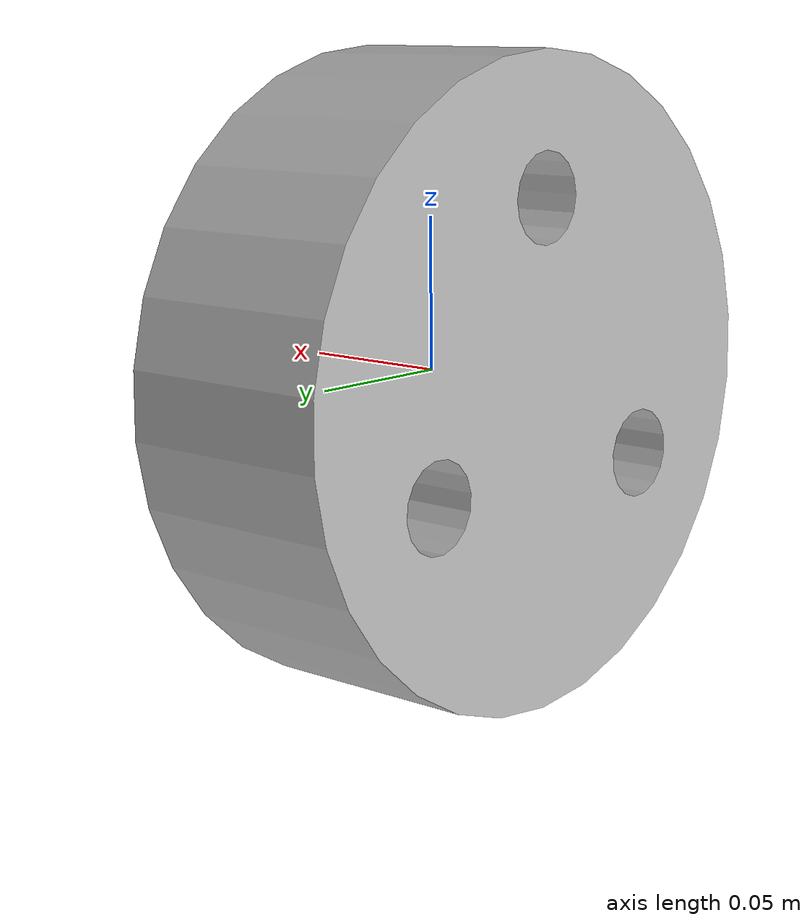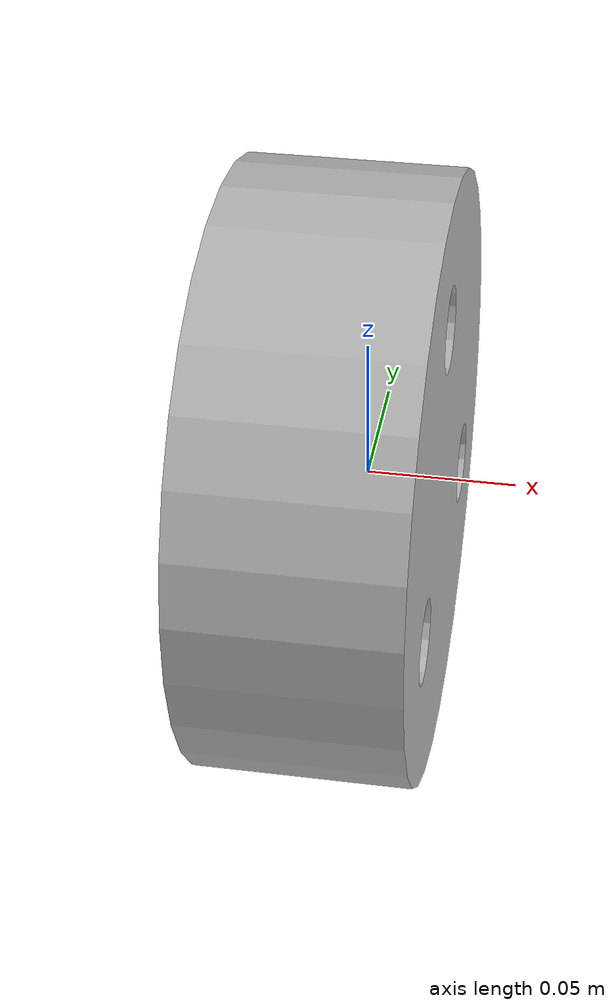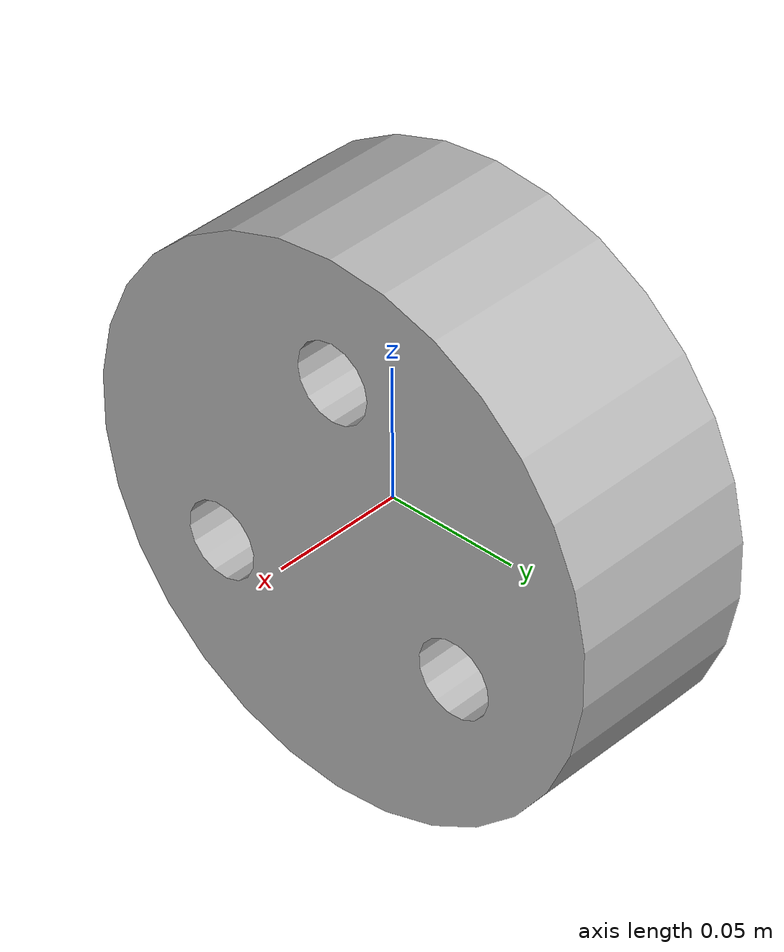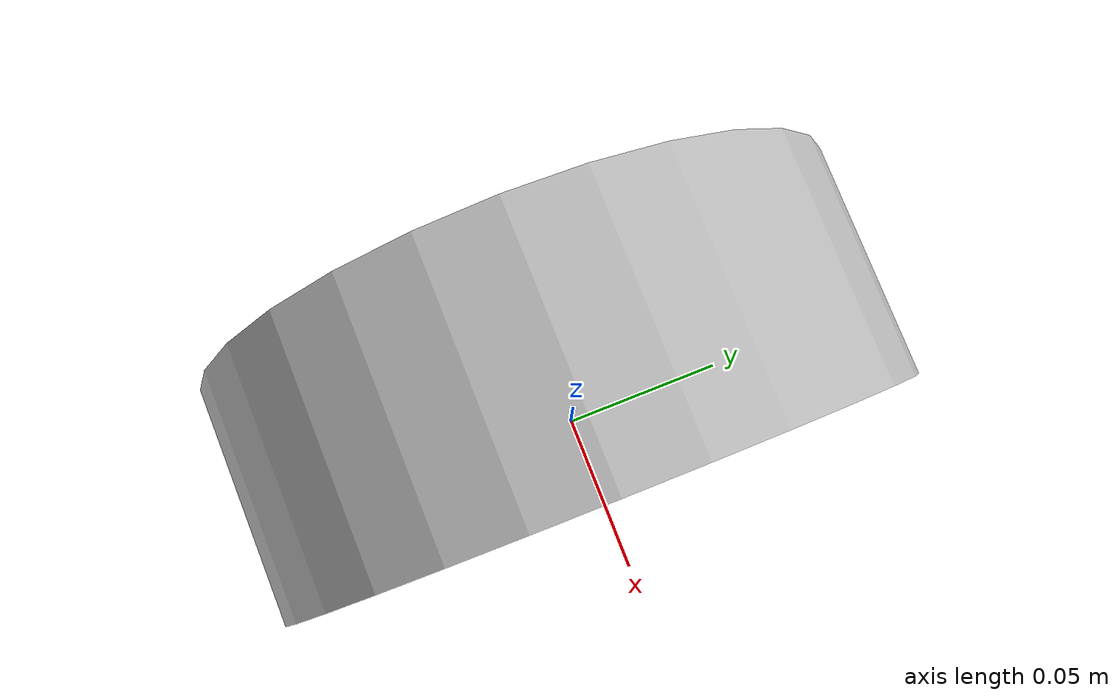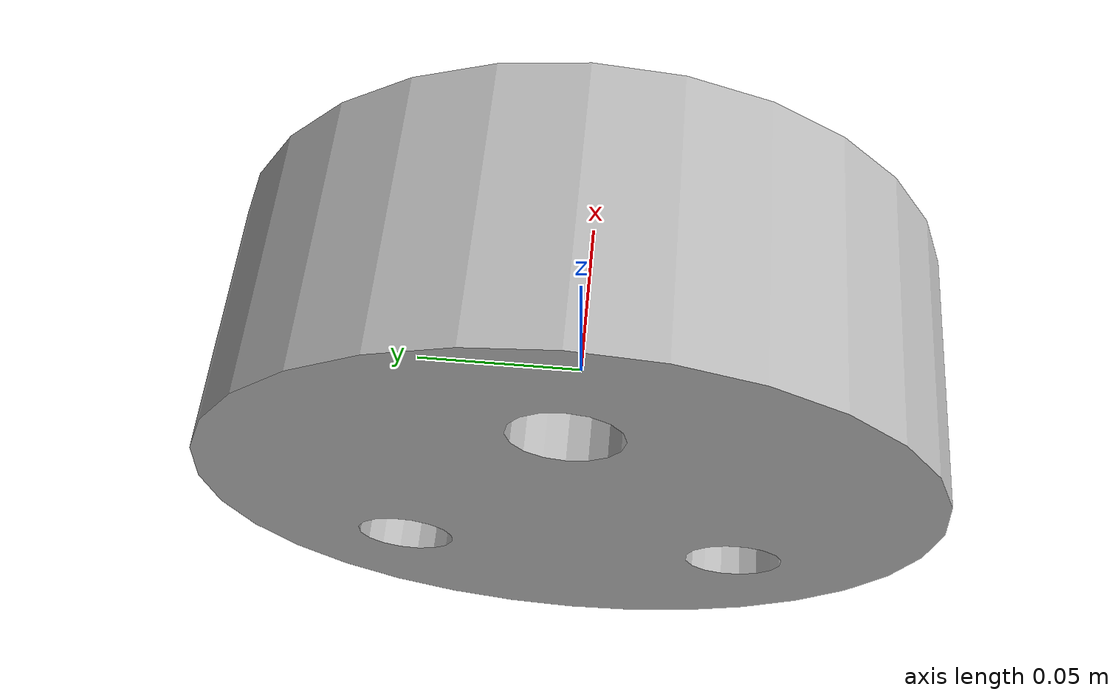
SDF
<?xml version='1.0'?>
<sdf version="1.3">

  <model name="Wheel_Hub">
    <pose> -0.01 0 0  0.0 0.0 0.0 </pose>
    <static>false</static>

    <link name="hub">
      <visual name="visual">
        <geometry>
          <mesh><uri>model://Wheel_Hub/meshes/wheel_hub.dae</uri>
<scale>1.0 1.0 1.0</scale></mesh>
        </geometry>
        <material>
          <emissive> 1 1 1 1 </emissive>
        </material>
      </visual>

      <collision name="collision">
        <geometry>
          <mesh><uri>model://Wheel_Hub/meshes/wheel_hub_square.dae</uri>
<scale>1.0 1.0 1.0</scale></mesh>
        </geometry>
      </collision>
    </link>
  </model>

</sdf>
